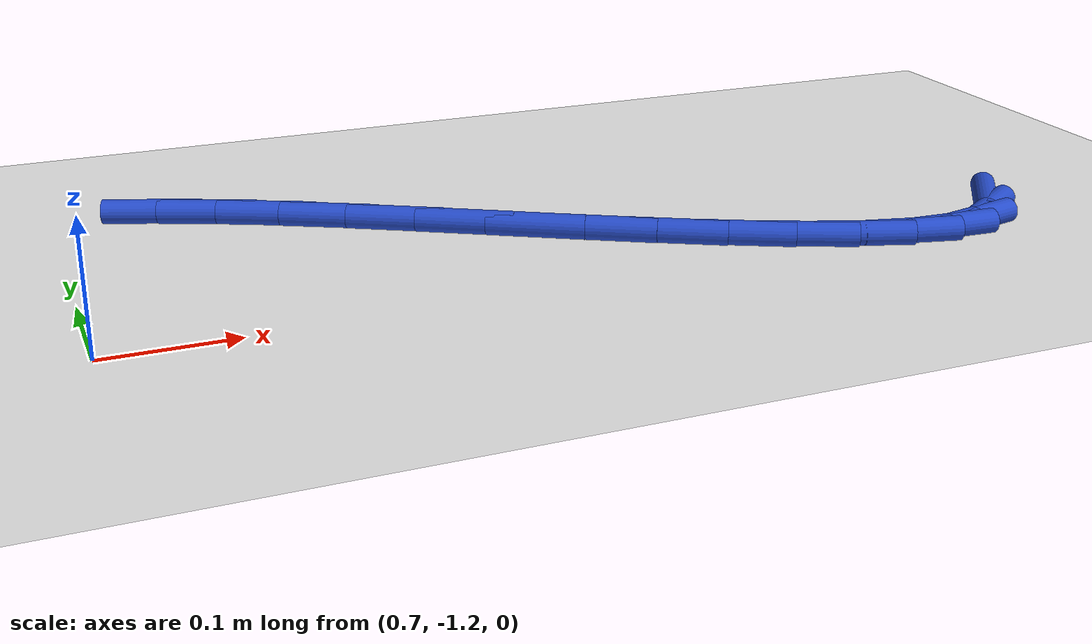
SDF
<sdf version="1.6">
 <world name="default">
  <model name="ground_plane">
   <static>1</static>
   <link name="link">
    <collision name="collision">
     <geometry><plane><normal>0 0 1</normal><size>100 100</size></plane></geometry>
     <surface><friction><ode><mu>100</mu><mu2>50</mu2></ode></friction></surface>
    </collision>
    <visual name="visual">
     <cast_shadows>0</cast_shadows>
     <geometry><plane><normal>0 0 1</normal><size>100 100</size></plane></geometry>
     <material>
      <script><uri>file://media/materials/scripts/gazebo.material</uri><name>Gazebo/WhiteGlow</name></script>
     </material>
    </visual>
   </link>
  </model>
  <model name="line">
   <link name="link_154">
    <pose>1.4288223166112048 -1.1626625189742477 0.01 0 1.57 0.9883088606233893</pose>
    <collision name="collision">
     <geometry><cylinder><radius>0.01</radius><length>0.08</length></cylinder></geometry>
    </collision>
    <visual name="visual">
     <material>
      <script><name>Gazebo/Blue</name><uri>file://media/materials/scripts/gazebo.material</uri></script>
     </material>
     <geometry><cylinder><radius>0.01</radius><length>0.08</length></cylinder></geometry>
    </visual>
   </link>
   <link name="link_155">
    <pose>1.4112984490440228 -1.1892650449512336 0.01 0 1.57 0.5955448526244703</pose>
    <collision name="collision">
     <geometry><cylinder><radius>0.01</radius><length>0.08</length></cylinder></geometry>
    </collision>
    <visual name="visual">
     <material>
      <script><name>Gazebo/Blue</name><uri>file://media/materials/scripts/gazebo.material</uri></script>
     </material>
     <geometry><cylinder><radius>0.01</radius><length>0.08</length></cylinder></geometry>
    </visual>
   </link>
   <link name="link_156">
    <pose>1.3876328114091638 -1.2053012665399925 0.01 0 1.57 0.22070893592606391</pose>
    <collision name="collision">
     <geometry><cylinder><radius>0.01</radius><length>0.08</length></cylinder></geometry>
    </collision>
    <visual name="visual">
     <material>
      <script><name>Gazebo/Blue</name><uri>file://media/materials/scripts/gazebo.material</uri></script>
     </material>
     <geometry><cylinder><radius>0.01</radius><length>0.08</length></cylinder></geometry>
    </visual>
   </link>
   <link name="link_157">
    <pose>1.3584651405330304 -1.211845439701586 0.01 0 1.57 -0.054209677158863614</pose>
    <collision name="collision">
     <geometry><cylinder><radius>0.01</radius><length>0.08</length></cylinder></geometry>
    </collision>
    <visual name="visual">
     <material>
      <script><name>Gazebo/Blue</name><uri>file://media/materials/scripts/gazebo.material</uri></script>
     </material>
     <geometry><cylinder><radius>0.01</radius><length>0.08</length></cylinder></geometry>
    </visual>
   </link>
   <link name="link_158">
    <pose>1.324456466093579 -1.2100000323925937 0.01 0 1.57 -0.2347338019135133</pose>
    <collision name="collision">
     <geometry><cylinder><radius>0.01</radius><length>0.08</length></cylinder></geometry>
    </collision>
    <visual name="visual">
     <material>
      <script><name>Gazebo/Blue</name><uri>file://media/materials/scripts/gazebo.material</uri></script>
     </material>
     <geometry><cylinder><radius>0.01</radius><length>0.08</length></cylinder></geometry>
    </visual>
   </link>
   <link name="link_159">
    <pose>1.2862678177687668 -1.200867512569595 0.01 0 1.57 -0.3519599767533104</pose>
    <collision name="collision">
     <geometry><cylinder><radius>0.01</radius><length>0.08</length></cylinder></geometry>
    </collision>
    <visual name="visual">
     <material>
      <script><name>Gazebo/Blue</name><uri>file://media/materials/scripts/gazebo.material</uri></script>
     </material>
     <geometry><cylinder><radius>0.01</radius><length>0.08</length></cylinder></geometry>
    </visual>
   </link>
   <link name="link_160">
    <pose>1.2445602252365502 -1.1855503481891685 0.01 0 1.57 -0.429270461995295</pose>
    <collision name="collision">
     <geometry><cylinder><radius>0.01</radius><length>0.08</length></cylinder></geometry>
    </collision>
    <visual name="visual">
     <material>
      <script><name>Gazebo/Blue</name><uri>file://media/materials/scripts/gazebo.material</uri></script>
     </material>
     <geometry><cylinder><radius>0.01</radius><length>0.08</length></cylinder></geometry>
    </visual>
   </link>
   <link name="link_161">
    <pose>1.1999947181748865 -1.1651510072078937 0.01 0 1.57 -0.48057256145071303</pose>
    <collision name="collision">
     <geometry><cylinder><radius>0.01</radius><length>0.08</length></cylinder></geometry>
    </collision>
    <visual name="visual">
     <material>
      <script><name>Gazebo/Blue</name><uri>file://media/materials/scripts/gazebo.material</uri></script>
     </material>
     <geometry><cylinder><radius>0.01</radius><length>0.08</length></cylinder></geometry>
    </visual>
   </link>
   <link name="link_162">
    <pose>1.153232326261732 -1.1407719575823496 0.01 0 1.57 -0.5137807284944288</pose>
    <collision name="collision">
     <geometry><cylinder><radius>0.01</radius><length>0.08</length></cylinder></geometry>
    </collision>
    <visual name="visual">
     <material>
      <script><name>Gazebo/Blue</name><uri>file://media/materials/scripts/gazebo.material</uri></script>
     </material>
     <geometry><cylinder><radius>0.01</radius><length>0.08</length></cylinder></geometry>
    </visual>
   </link>
   <link name="link_163">
    <pose>1.1049340791750444 -1.113515667269116 0.01 0 1.57 -0.5333199294868226</pose>
    <collision name="collision">
     <geometry><cylinder><radius>0.01</radius><length>0.08</length></cylinder></geometry>
    </collision>
    <visual name="visual">
     <material>
      <script><name>Gazebo/Blue</name><uri>file://media/materials/scripts/gazebo.material</uri></script>
     </material>
     <geometry><cylinder><radius>0.01</radius><length>0.08</length></cylinder></geometry>
    </visual>
   </link>
   <link name="link_164">
    <pose>1.05576100659278 -1.0844846042247716 0.01 0 1.57 -0.5414795795728907</pose>
    <collision name="collision">
     <geometry><cylinder><radius>0.01</radius><length>0.08</length></cylinder></geometry>
    </collision>
    <visual name="visual">
     <material>
      <script><name>Gazebo/Blue</name><uri>file://media/materials/scripts/gazebo.material</uri></script>
     </material>
     <geometry><cylinder><radius>0.01</radius><length>0.08</length></cylinder></geometry>
    </visual>
   </link>
   <link name="link_165">
    <pose>1.006374138192896 -1.0547812364058962 0.01 0 1.57 -0.5390575275499835</pose>
    <collision name="collision">
     <geometry><cylinder><radius>0.01</radius><length>0.08</length></cylinder></geometry>
    </collision>
    <visual name="visual">
     <material>
      <script><name>Gazebo/Blue</name><uri>file://media/materials/scripts/gazebo.material</uri></script>
     </material>
     <geometry><cylinder><radius>0.01</radius><length>0.08</length></cylinder></geometry>
    </visual>
   </link>
   <link name="link_166">
    <pose>0.9574345036533487 -1.0255080317690681 0.01 0 1.57 -0.5255584234076757</pose>
    <collision name="collision">
     <geometry><cylinder><radius>0.01</radius><length>0.08</length></cylinder></geometry>
    </collision>
    <visual name="visual">
     <material>
      <script><name>Gazebo/Blue</name><uri>file://media/materials/scripts/gazebo.material</uri></script>
     </material>
     <geometry><cylinder><radius>0.01</radius><length>0.08</length></cylinder></geometry>
    </visual>
   </link>
   <link name="link_167">
    <pose>0.9096031326520966 -0.9977674582708678 0.01 0 1.57 -0.4990238201139089</pose>
    <collision name="collision">
     <geometry><cylinder><radius>0.01</radius><length>0.08</length></cylinder></geometry>
    </collision>
    <visual name="visual">
     <material>
      <script><name>Gazebo/Blue</name><uri>file://media/materials/scripts/gazebo.material</uri></script>
     </material>
     <geometry><cylinder><radius>0.01</radius><length>0.08</length></cylinder></geometry>
    </visual>
   </link>
   <link name="link_168">
    <pose>0.8635410548670938 -0.9726619838678727 0.01 0 1.57 -0.45595119664050343</pose>
    <collision name="collision">
     <geometry><cylinder><radius>0.01</radius><length>0.08</length></cylinder></geometry>
    </collision>
    <visual name="visual">
     <material>
      <script><name>Gazebo/Blue</name><uri>file://media/materials/scripts/gazebo.material</uri></script>
     </material>
     <geometry><cylinder><radius>0.01</radius><length>0.08</length></cylinder></geometry>
    </visual>
   </link>
   <link name="link_169">
    <pose>0.8198819949288731 -0.9512508746518366 0.01 0 1.57 -0.4066465249043066</pose>
    <collision name="collision">
     <geometry><cylinder><radius>0.01</radius><length>0.08</length></cylinder></geometry>
    </collision>
    <visual name="visual">
     <material>
      <script><name>Gazebo/Blue</name><uri>file://media/materials/scripts/gazebo.material</uri></script>
     </material>
     <geometry><cylinder><radius>0.01</radius><length>0.08</length></cylinder></geometry>
    </visual>
   </link>
   <link name="link_170">
    <pose>0.7785332398858154 -0.9334440319930527 0.01 0 1.57 -0.3711657101341723</pose>
    <collision name="collision">
     <geometry><cylinder><radius>0.01</radius><length>0.08</length></cylinder></geometry>
    </collision>
    <visual name="visual">
     <material>
      <script><name>Gazebo/Blue</name><uri>file://media/materials/scripts/gazebo.material</uri></script>
     </material>
     <geometry><cylinder><radius>0.01</radius><length>0.08</length></cylinder></geometry>
    </visual>
   </link>
  </model>
 </world>
</sdf>
